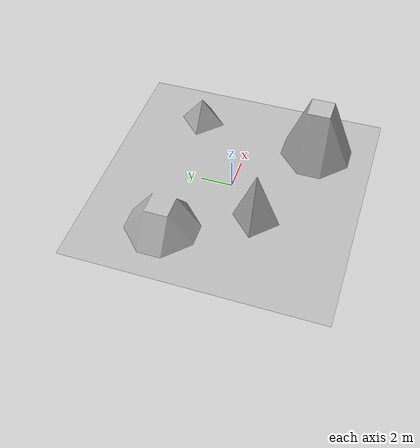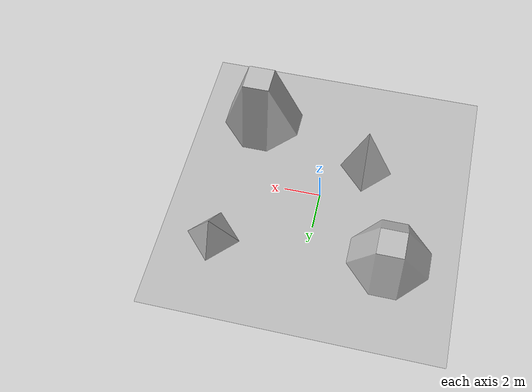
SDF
<?xml version="1.0" ?>
<sdf version="1.5">
  <model name="simple_terrain">
    <pose>0 0 0 0 0 0</pose>
    <static>true</static>
    <link name="body">
      <visual name="visual">
        <geometry>
          <mesh><uri>model://turtlebot3_world/meshes/simple_terrain.dae</uri></mesh>
        </geometry>
        <material>
           <script>
             <uri>model://turtlebot3_world/media/scripts</uri>
             <uri>model://turtlebot3_world/media/Textures</uri>
             <name>RepeatedGrass/Diffuse</name>
           </script>
         </material>
      </visual>

      <collision name="collision">
        <geometry>
          <mesh><uri>model://turtlebot3_world/meshes/simple_terrain.dae</uri></mesh>
        </geometry>
      </collision>
    </link>
  </model>
</sdf>
